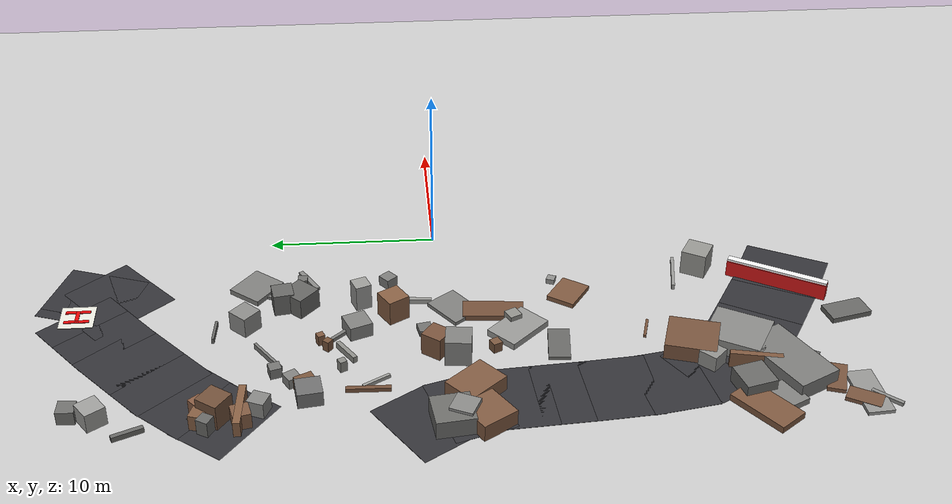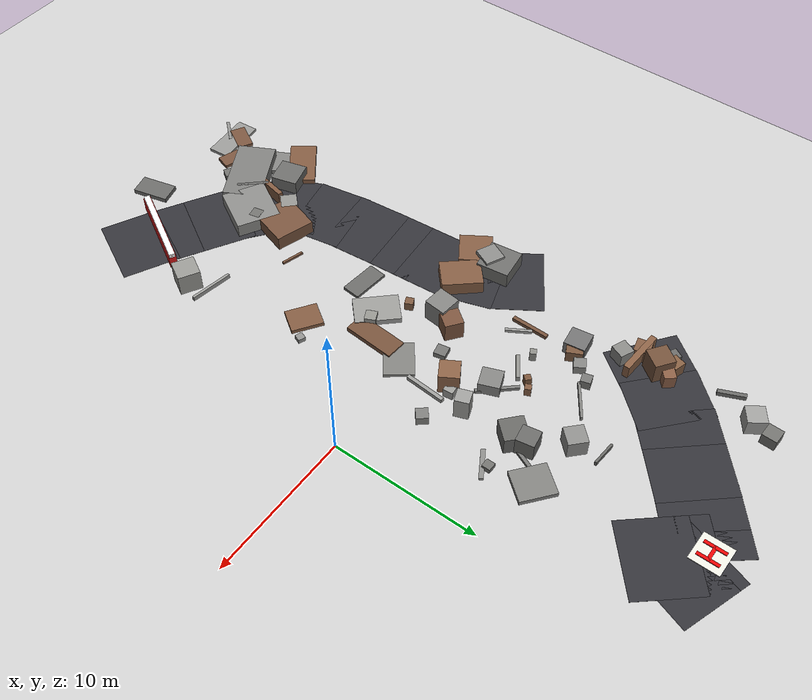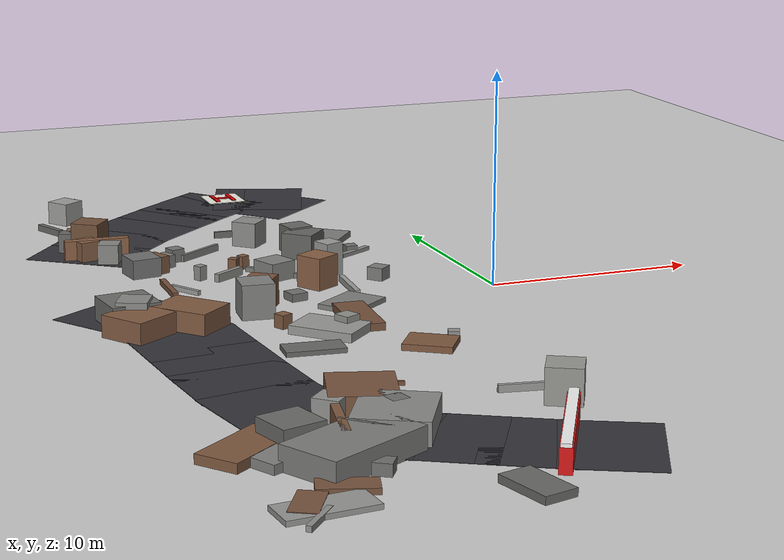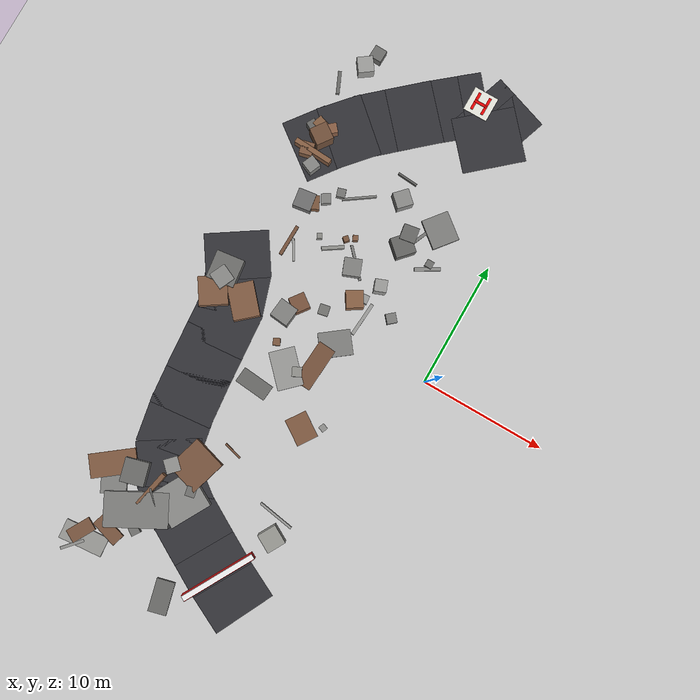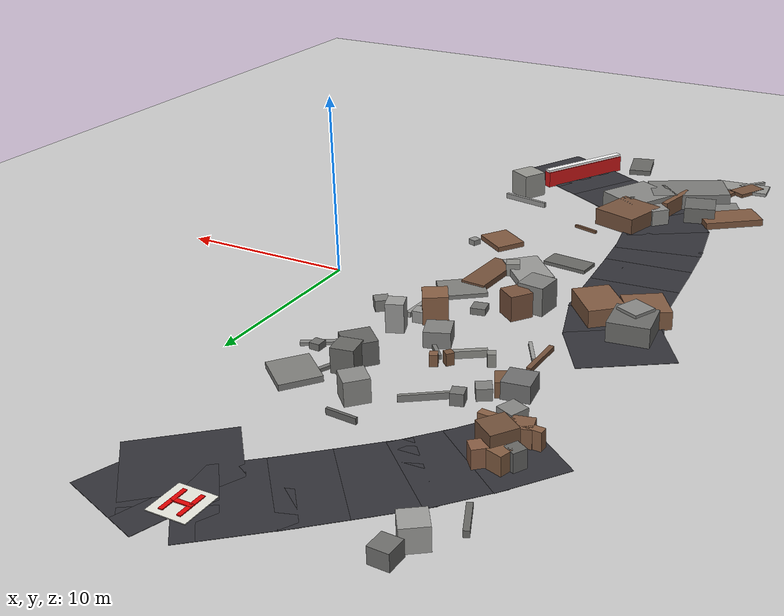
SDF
<sdf version="1.6">
 <world name="navitas_arena">
  <model name="ground_plane">
   <static>true</static>
   <link name="link">
    <collision name="collision">
     <geometry><plane><normal>0 0 1</normal><size>400 400</size></plane></geometry>
     <surface><friction><ode><mu>0.8</mu><mu2>0.8</mu2></ode></friction></surface>
    </collision>
    <visual name="visual">
     <cast_shadows>false</cast_shadows>
     <geometry><plane><normal>0 0 1</normal><size>400 400</size></plane></geometry>
     <material>
      <script><uri>file://media/materials/scripts/gazebo.material</uri><name>Gazebo/Grey</name></script>
     </material>
    </visual>
   </link>
  </model>
  <model name="road_orta_1_1">
   <static>true</static>
   <pose>-4.867 -20.856 0.040 0 0 2.677</pose>
   <link name="link">
    <collision name="col"><geometry><box><size>3.912 5.000 0.020</size></box></geometry></collision>
    <visual name="vis">
     <geometry><box><size>3.912 5.000 0.020</size></box></geometry>
     <material><ambient>0.20 0.20 0.22 1</ambient><diffuse>0.20 0.20 0.22 1</diffuse></material>
    </visual>
   </link>
  </model>
  <model name="road_orta_1_2">
   <static>true</static>
   <pose>-7.395 -19.509 0.040 0 0 2.624</pose>
   <link name="link">
    <collision name="col"><geometry><box><size>3.619 5.000 0.020</size></box></geometry></collision>
    <visual name="vis">
     <geometry><box><size>3.619 5.000 0.020</size></box></geometry>
     <material><ambient>0.20 0.20 0.22 1</ambient><diffuse>0.20 0.20 0.22 1</diffuse></material>
    </visual>
   </link>
  </model>
  <model name="road_orta_1_3">
   <static>true</static>
   <pose>-9.759 -18.153 0.040 0 0 2.617</pose>
   <link name="link">
    <collision name="col"><geometry><box><size>3.632 5.000 0.020</size></box></geometry></collision>
    <visual name="vis">
     <geometry><box><size>3.632 5.000 0.020</size></box></geometry>
     <material><ambient>0.20 0.20 0.22 1</ambient><diffuse>0.20 0.20 0.22 1</diffuse></material>
    </visual>
   </link>
  </model>
  <model name="road_orta_1_4">
   <static>true</static>
   <pose>-11.968 -16.688 0.040 0 0 2.491</pose>
   <link name="link">
    <collision name="col"><geometry><box><size>3.480 5.000 0.020</size></box></geometry></collision>
    <visual name="vis">
     <geometry><box><size>3.480 5.000 0.020</size></box></geometry>
     <material><ambient>0.20 0.20 0.22 1</ambient><diffuse>0.20 0.20 0.22 1</diffuse></material>
    </visual>
   </link>
  </model>
  <model name="road_orta_1_5">
   <static>true</static>
   <pose>-13.678 -14.833 0.040 0 0 2.138</pose>
   <link name="link">
    <collision name="col"><geometry><box><size>3.445 5.000 0.020</size></box></geometry></collision>
    <visual name="vis">
     <geometry><box><size>3.445 5.000 0.020</size></box></geometry>
     <material><ambient>0.20 0.20 0.22 1</ambient><diffuse>0.20 0.20 0.22 1</diffuse></material>
    </visual>
   </link>
  </model>
  <model name="road_orta_1_6">
   <static>true</static>
   <pose>-14.622 -12.340 0.040 0 0 1.751</pose>
   <link name="link">
    <collision name="col"><geometry><box><size>3.787 5.000 0.020</size></box></geometry></collision>
    <visual name="vis">
     <geometry><box><size>3.787 5.000 0.020</size></box></geometry>
     <material><ambient>0.20 0.20 0.22 1</ambient><diffuse>0.20 0.20 0.22 1</diffuse></material>
    </visual>
   </link>
  </model>
  <model name="road_orta_1_7">
   <static>true</static>
   <pose>-15.019 -9.460 0.040 0 0 1.665</pose>
   <link name="link">
    <collision name="col"><geometry><box><size>3.833 5.000 0.020</size></box></geometry></collision>
    <visual name="vis">
     <geometry><box><size>3.833 5.000 0.020</size></box></geometry>
     <material><ambient>0.20 0.20 0.22 1</ambient><diffuse>0.20 0.20 0.22 1</diffuse></material>
    </visual>
   </link>
  </model>
  <model name="road_orta_1_8">
   <static>true</static>
   <pose>-15.265 -6.600 0.040 0 0 1.647</pose>
   <link name="link">
    <collision name="col"><geometry><box><size>3.708 5.000 0.020</size></box></geometry></collision>
    <visual name="vis">
     <geometry><box><size>3.708 5.000 0.020</size></box></geometry>
     <material><ambient>0.20 0.20 0.22 1</ambient><diffuse>0.20 0.20 0.22 1</diffuse></material>
    </visual>
   </link>
  </model>
  <model name="road_orta_1_9">
   <static>true</static>
   <pose>-15.480 -3.800 0.040 0 0 1.648</pose>
   <link name="link">
    <collision name="col"><geometry><box><size>3.708 5.000 0.020</size></box></geometry></collision>
    <visual name="vis">
     <geometry><box><size>3.708 5.000 0.020</size></box></geometry>
     <material><ambient>0.20 0.20 0.22 1</ambient><diffuse>0.20 0.20 0.22 1</diffuse></material>
    </visual>
   </link>
  </model>
  <model name="road_orta_1_10">
   <static>true</static>
   <pose>-16.001 -1.117 0.040 0 0 1.881</pose>
   <link name="link">
    <collision name="col"><geometry><box><size>3.596 5.000 0.020</size></box></geometry></collision>
    <visual name="vis">
     <geometry><box><size>3.596 5.000 0.020</size></box></geometry>
     <material><ambient>0.20 0.20 0.22 1</ambient><diffuse>0.20 0.20 0.22 1</diffuse></material>
    </visual>
   </link>
  </model>
  <model name="road_orta_1_11">
   <static>true</static>
   <pose>-17.178 1.333 0.040 0 0 2.151</pose>
   <link name="link">
    <collision name="col"><geometry><box><size>3.690 5.000 0.020</size></box></geometry></collision>
    <visual name="vis">
     <geometry><box><size>3.690 5.000 0.020</size></box></geometry>
     <material><ambient>0.20 0.20 0.22 1</ambient><diffuse>0.20 0.20 0.22 1</diffuse></material>
    </visual>
   </link>
  </model>
  <model name="road_orta_1_15">
   <static>true</static>
   <pose>-16.307 11.926 0.040 0 0 0.923</pose>
   <link name="link">
    <collision name="col"><geometry><box><size>3.594 5.000 0.020</size></box></geometry></collision>
    <visual name="vis">
     <geometry><box><size>3.594 5.000 0.020</size></box></geometry>
     <material><ambient>0.20 0.20 0.22 1</ambient><diffuse>0.20 0.20 0.22 1</diffuse></material>
    </visual>
   </link>
  </model>
  <model name="road_orta_1_16">
   <static>true</static>
   <pose>-14.594 14.014 0.040 0 0 0.845</pose>
   <link name="link">
    <collision name="col"><geometry><box><size>3.611 5.000 0.020</size></box></geometry></collision>
    <visual name="vis">
     <geometry><box><size>3.611 5.000 0.020</size></box></geometry>
     <material><ambient>0.20 0.20 0.22 1</ambient><diffuse>0.20 0.20 0.22 1</diffuse></material>
    </visual>
   </link>
  </model>
  <model name="road_orta_1_17">
   <static>true</static>
   <pose>-12.759 15.866 0.040 0 0 0.730</pose>
   <link name="link">
    <collision name="col"><geometry><box><size>3.412 5.000 0.020</size></box></geometry></collision>
    <visual name="vis">
     <geometry><box><size>3.412 5.000 0.020</size></box></geometry>
     <material><ambient>0.20 0.20 0.22 1</ambient><diffuse>0.20 0.20 0.22 1</diffuse></material>
    </visual>
   </link>
  </model>
  <model name="road_orta_1_18">
   <static>true</static>
   <pose>-10.792 17.616 0.040 0 0 0.724</pose>
   <link name="link">
    <collision name="col"><geometry><box><size>3.653 5.000 0.020</size></box></geometry></collision>
    <visual name="vis">
     <geometry><box><size>3.653 5.000 0.020</size></box></geometry>
     <material><ambient>0.20 0.20 0.22 1</ambient><diffuse>0.20 0.20 0.22 1</diffuse></material>
    </visual>
   </link>
  </model>
  <model name="road_orta_1_19">
   <static>true</static>
   <pose>-8.635 19.461 0.040 0 0 0.692</pose>
   <link name="link">
    <collision name="col"><geometry><box><size>3.825 5.000 0.020</size></box></geometry></collision>
    <visual name="vis">
     <geometry><box><size>3.825 5.000 0.020</size></box></geometry>
     <material><ambient>0.20 0.20 0.22 1</ambient><diffuse>0.20 0.20 0.22 1</diffuse></material>
    </visual>
   </link>
  </model>
  <model name="road_orta_1_20">
   <static>true</static>
   <pose>-7.142 20.697 0.040 0 0 0.688</pose>
   <link name="link">
    <collision name="col"><geometry><box><size>1.853 5.000 0.020</size></box></geometry></collision>
    <visual name="vis">
     <geometry><box><size>1.853 5.000 0.020</size></box></geometry>
     <material><ambient>0.20 0.20 0.22 1</ambient><diffuse>0.20 0.20 0.22 1</diffuse></material>
    </visual>
   </link>
  </model>
  <model name="road_orta_2_15">
   <static>true</static>
   <pose>-4.875 18.815 0.040 0 0 2.289</pose>
   <link name="link">
    <collision name="col"><geometry><box><size>4.393 5.000 0.020</size></box></geometry></collision>
    <visual name="vis">
     <geometry><box><size>4.393 5.000 0.020</size></box></geometry>
     <material><ambient>0.20 0.20 0.22 1</ambient><diffuse>0.20 0.20 0.22 1</diffuse></material>
    </visual>
   </link>
  </model>
  <model name="road_orta_2_16">
   <static>true</static>
   <pose>-6.399 20.565 0.040 0 0 2.281</pose>
   <link name="link">
    <collision name="col"><geometry><box><size>2.048 5.000 0.020</size></box></geometry></collision>
    <visual name="vis">
     <geometry><box><size>2.048 5.000 0.020</size></box></geometry>
     <material><ambient>0.20 0.20 0.22 1</ambient><diffuse>0.20 0.20 0.22 1</diffuse></material>
    </visual>
   </link>
  </model>
  <model name="road_orta_3_25">
   <static>true</static>
   <pose>-4.597 20.255 0.040 0 0 2.811</pose>
   <link name="link">
    <collision name="col"><geometry><box><size>4.080 5.000 0.020</size></box></geometry></collision>
    <visual name="vis">
     <geometry><box><size>4.080 5.000 0.020</size></box></geometry>
     <material><ambient>0.20 0.20 0.22 1</ambient><diffuse>0.20 0.20 0.22 1</diffuse></material>
    </visual>
   </link>
  </model>
  <model name="road_orta_3_26">
   <static>true</static>
   <pose>-6.438 20.885 0.040 0 0 2.812</pose>
   <link name="link">
    <collision name="col"><geometry><box><size>1.610 5.000 0.020</size></box></geometry></collision>
    <visual name="vis">
     <geometry><box><size>1.610 5.000 0.020</size></box></geometry>
     <material><ambient>0.20 0.20 0.22 1</ambient><diffuse>0.20 0.20 0.22 1</diffuse></material>
    </visual>
   </link>
  </model>
  <model name="bar_orta_1">
   <static>true</static>
   <pose>-6.214 -20.182 0.500 0 0 4.200</pose>
   <link name="link">
    <collision name="col"><geometry><box><size>6.000 0.500 1.000</size></box></geometry></collision>
    <visual name="vis">
     <geometry><box><size>6.000 0.500 1.000</size></box></geometry>
     <material><ambient>0.85 0.10 0.10 1</ambient><diffuse>0.85 0.10 0.10 1</diffuse></material>
    </visual>
   </link>
  </model>
  <model name="bar_orta_1b">
   <static>true</static>
   <pose>-6.214 -20.182 1.000 0 0 4.200</pose>
   <link name="link">
    <collision name="col"><geometry><box><size>6.000 0.400 0.300</size></box></geometry></collision>
    <visual name="vis">
     <geometry><box><size>6.000 0.400 0.300</size></box></geometry>
     <material><ambient>0.95 0.95 0.95 1</ambient><diffuse>0.95 0.95 0.95 1</diffuse></material>
    </visual>
   </link>
  </model>
  <model name="blk_orta_1_0_0">
   <static>true</static>
   <pose>-13.789 -17.137 0.500 0 0 1.366</pose>
   <link name="link">
    <collision name="col"><geometry><box><size>2.909 0.349 1.000</size></box></geometry></collision>
    <visual name="vis">
     <geometry><box><size>2.909 0.349 1.000</size></box></geometry>
     <material><ambient>0.50 0.35 0.25 1</ambient><diffuse>0.50 0.35 0.25 1</diffuse></material>
    </visual>
   </link>
  </model>
  <model name="blk_orta_1_0_1">
   <static>true</static>
   <pose>-11.109 -15.801 0.500 0 0 1.775</pose>
   <link name="link">
    <collision name="col"><geometry><box><size>0.743 0.743 1.000</size></box></geometry></collision>
    <visual name="vis">
     <geometry><box><size>0.743 0.743 1.000</size></box></geometry>
     <material><ambient>0.44 0.44 0.43 1</ambient><diffuse>0.44 0.44 0.43 1</diffuse></material>
    </visual>
   </link>
  </model>
  <model name="blk_orta_1_0_2">
   <static>true</static>
   <pose>-13.114 -17.917 0.500 0 0 2.328</pose>
   <link name="link">
    <collision name="col"><geometry><box><size>2.211 0.216 1.000</size></box></geometry></collision>
    <visual name="vis">
     <geometry><box><size>2.211 0.216 1.000</size></box></geometry>
     <material><ambient>0.41 0.41 0.40 1</ambient><diffuse>0.41 0.41 0.40 1</diffuse></material>
    </visual>
   </link>
  </model>
  <model name="blk_orta_1_0_3">
   <static>true</static>
   <pose>-11.470 -16.651 0.500 0 0 1.062</pose>
   <link name="link">
    <collision name="col"><geometry><box><size>3.324 3.010 1.000</size></box></geometry></collision>
    <visual name="vis">
     <geometry><box><size>3.324 3.010 1.000</size></box></geometry>
     <material><ambient>0.54 0.54 0.53 1</ambient><diffuse>0.54 0.54 0.53 1</diffuse></material>
    </visual>
   </link>
  </model>
  <model name="blk_orta_1_0_4">
   <static>true</static>
   <pose>-13.959 -18.974 0.500 0 0 0.489</pose>
   <link name="link">
    <collision name="col"><geometry><box><size>4.842 2.659 1.000</size></box></geometry></collision>
    <visual name="vis">
     <geometry><box><size>4.842 2.659 1.000</size></box></geometry>
     <material><ambient>0.49 0.49 0.48 1</ambient><diffuse>0.49 0.49 0.48 1</diffuse></material>
    </visual>
   </link>
  </model>
  <model name="blk_orta_1_0_5">
   <static>true</static>
   <pose>-15.481 -16.636 0.500 0 0 1.836</pose>
   <link name="link">
    <collision name="col"><geometry><box><size>1.846 1.846 1.000</size></box></geometry></collision>
    <visual name="vis">
     <geometry><box><size>1.846 1.846 1.000</size></box></geometry>
     <material><ambient>0.42 0.42 0.41 1</ambient><diffuse>0.42 0.42 0.41 1</diffuse></material>
    </visual>
   </link>
  </model>
  <model name="blk_orta_1_0_6">
   <static>true</static>
   <pose>-13.312 -14.808 0.500 0 0 0.800</pose>
   <link name="link">
    <collision name="col"><geometry><box><size>1.115 1.115 1.000</size></box></geometry></collision>
    <visual name="vis">
     <geometry><box><size>1.115 1.115 1.000</size></box></geometry>
     <material><ambient>0.57 0.57 0.56 1</ambient><diffuse>0.57 0.57 0.56 1</diffuse></material>
    </visual>
   </link>
  </model>
  <model name="blk_orta_1_0_7">
   <static>true</static>
   <pose>-11.785 -13.976 0.500 0 0 1.281</pose>
   <link name="link">
    <collision name="col"><geometry><box><size>2.906 2.723 1.000</size></box></geometry></collision>
    <visual name="vis">
     <geometry><box><size>2.906 2.723 1.000</size></box></geometry>
     <material><ambient>0.47 0.33 0.24 1</ambient><diffuse>0.47 0.33 0.24 1</diffuse></material>
    </visual>
   </link>
  </model>
  <model name="blk_orta_1_1_1">
   <static>true</static>
   <pose>-17.761 -0.033 0.500 0 0 1.296</pose>
   <link name="link">
    <collision name="col"><geometry><box><size>0.597 0.597 1.000</size></box></geometry></collision>
    <visual name="vis">
     <geometry><box><size>0.597 0.597 1.000</size></box></geometry>
     <material><ambient>0.55 0.55 0.53 1</ambient><diffuse>0.55 0.55 0.53 1</diffuse></material>
    </visual>
   </link>
  </model>
  <model name="blk_orta_1_1_3">
   <static>true</static>
   <pose>-17.197 -0.771 0.646 0 0 1.134</pose>
   <link name="link">
    <collision name="col"><geometry><box><size>1.362 1.362 1.292</size></box></geometry></collision>
    <visual name="vis">
     <geometry><box><size>1.362 1.362 1.292</size></box></geometry>
     <material><ambient>0.54 0.54 0.53 1</ambient><diffuse>0.54 0.54 0.53 1</diffuse></material>
    </visual>
   </link>
  </model>
  <model name="blk_orta_1_1_4">
   <static>true</static>
   <pose>-17.312 -0.121 0.562 0 0 0.123</pose>
   <link name="link">
    <collision name="col"><geometry><box><size>2.219 2.219 1.124</size></box></geometry></collision>
    <visual name="vis">
     <geometry><box><size>2.219 2.219 1.124</size></box></geometry>
     <material><ambient>0.43 0.43 0.42 1</ambient><diffuse>0.43 0.43 0.42 1</diffuse></material>
    </visual>
   </link>
  </model>
  <model name="blk_orta_1_1_6">
   <static>true</static>
   <pose>-17.311 -1.991 0.500 0 0 0.576</pose>
   <link name="link">
    <collision name="col"><geometry><box><size>2.222 2.222 1.000</size></box></geometry></collision>
    <visual name="vis">
     <geometry><box><size>2.222 2.222 1.000</size></box></geometry>
     <material><ambient>0.51 0.36 0.26 1</ambient><diffuse>0.51 0.36 0.26 1</diffuse></material>
    </visual>
   </link>
  </model>
  <model name="blk_orta_1_1_7">
   <static>true</static>
   <pose>-14.928 -1.519 0.500 0 0 2.293</pose>
   <link name="link">
    <collision name="col"><geometry><box><size>2.719 2.048 1.000</size></box></geometry></collision>
    <visual name="vis">
     <geometry><box><size>2.719 2.048 1.000</size></box></geometry>
     <material><ambient>0.51 0.36 0.26 1</ambient><diffuse>0.51 0.36 0.26 1</diffuse></material>
    </visual>
   </link>
  </model>
  <model name="blk_orta_1_2_0">
   <static>true</static>
   <pose>-15.695 10.122 0.500 0 0 1.169</pose>
   <link name="link">
    <collision name="col"><geometry><box><size>0.996 0.996 1.000</size></box></geometry></collision>
    <visual name="vis">
     <geometry><box><size>0.996 0.996 1.000</size></box></geometry>
     <material><ambient>0.53 0.53 0.52 1</ambient><diffuse>0.53 0.53 0.52 1</diffuse></material>
    </visual>
   </link>
  </model>
  <model name="blk_orta_1_2_1">
   <static>true</static>
   <pose>-16.675 13.234 0.500 0 0 1.268</pose>
   <link name="link">
    <collision name="col"><geometry><box><size>0.844 0.844 1.000</size></box></geometry></collision>
    <visual name="vis">
     <geometry><box><size>0.844 0.844 1.000</size></box></geometry>
     <material><ambient>0.52 0.37 0.26 1</ambient><diffuse>0.52 0.37 0.26 1</diffuse></material>
    </visual>
   </link>
  </model>
  <model name="blk_orta_1_2_2">
   <static>true</static>
   <pose>-16.110 11.100 0.500 0 0 3.080</pose>
   <link name="link">
    <collision name="col"><geometry><box><size>3.111 0.407 1.000</size></box></geometry></collision>
    <visual name="vis">
     <geometry><box><size>3.111 0.407 1.000</size></box></geometry>
     <material><ambient>0.54 0.38 0.27 1</ambient><diffuse>0.54 0.38 0.27 1</diffuse></material>
    </visual>
   </link>
  </model>
  <model name="blk_orta_1_2_4">
   <static>true</static>
   <pose>-16.128 12.422 0.788 0 0 2.518</pose>
   <link name="link">
    <collision name="col"><geometry><box><size>1.392 1.392 1.576</size></box></geometry></collision>
    <visual name="vis">
     <geometry><box><size>1.392 1.392 1.576</size></box></geometry>
     <material><ambient>0.45 0.32 0.23 1</ambient><diffuse>0.45 0.32 0.23 1</diffuse></material>
    </visual>
   </link>
  </model>
  <model name="blk_orta_1_2_5">
   <static>true</static>
   <pose>-15.697 13.327 0.500 0 0 0.709</pose>
   <link name="link">
    <collision name="col"><geometry><box><size>0.769 0.769 1.000</size></box></geometry></collision>
    <visual name="vis">
     <geometry><box><size>0.769 0.769 1.000</size></box></geometry>
     <material><ambient>0.54 0.37 0.27 1</ambient><diffuse>0.54 0.37 0.27 1</diffuse></material>
    </visual>
   </link>
  </model>
  <model name="blk_orta_1_2_6">
   <static>true</static>
   <pose>-16.611 11.033 0.500 0 0 0.236</pose>
   <link name="link">
    <collision name="col"><geometry><box><size>1.013 1.013 1.000</size></box></geometry></collision>
    <visual name="vis">
     <geometry><box><size>1.013 1.013 1.000</size></box></geometry>
     <material><ambient>0.51 0.36 0.26 1</ambient><diffuse>0.51 0.36 0.26 1</diffuse></material>
    </visual>
   </link>
  </model>
  <model name="blk_orta_1_2_7">
   <static>true</static>
   <pose>-17.157 12.847 0.500 0 0 2.629</pose>
   <link name="link">
    <collision name="col"><geometry><box><size>0.707 0.707 1.000</size></box></geometry></collision>
    <visual name="vis">
     <geometry><box><size>0.707 0.707 1.000</size></box></geometry>
     <material><ambient>0.41 0.41 0.40 1</ambient><diffuse>0.41 0.41 0.40 1</diffuse></material>
    </visual>
   </link>
  </model>
  <model name="deb_orta_7">
   <static>true</static>
   <pose>-13.443 8.440 0.307 0 0 0.536</pose>
   <link name="link">
    <collision name="col"><geometry><box><size>0.771 0.771 0.615</size></box></geometry></collision>
    <visual name="vis">
     <geometry><box><size>0.771 0.771 0.615</size></box></geometry>
     <material><ambient>0.51 0.51 0.50 1</ambient><diffuse>0.51 0.51 0.50 1</diffuse></material>
    </visual>
   </link>
  </model>
  <model name="deb_orta_8">
   <static>true</static>
   <pose>-6.487 4.545 0.793 0 0 0.359</pose>
   <link name="link">
    <collision name="col"><geometry><box><size>0.948 0.948 1.586</size></box></geometry></collision>
    <visual name="vis">
     <geometry><box><size>0.948 0.948 1.586</size></box></geometry>
     <material><ambient>0.61 0.61 0.60 1</ambient><diffuse>0.61 0.61 0.60 1</diffuse></material>
    </visual>
   </link>
  </model>
  <model name="deb_orta_11">
   <static>true</static>
   <pose>-10.564 6.492 0.327 0 0 2.427</pose>
   <link name="link">
    <collision name="col"><geometry><box><size>0.428 0.428 0.654</size></box></geometry></collision>
    <visual name="vis">
     <geometry><box><size>0.428 0.428 0.654</size></box></geometry>
     <material><ambient>0.47 0.33 0.23 1</ambient><diffuse>0.47 0.33 0.23 1</diffuse></material>
    </visual>
   </link>
  </model>
  <model name="deb_orta_12">
   <static>true</static>
   <pose>-15.956 18.925 0.576 0 0 0.615</pose>
   <link name="link">
    <collision name="col"><geometry><box><size>1.236 1.236 1.151</size></box></geometry></collision>
    <visual name="vis">
     <geometry><box><size>1.236 1.236 1.151</size></box></geometry>
     <material><ambient>0.62 0.62 0.61 1</ambient><diffuse>0.62 0.62 0.61 1</diffuse></material>
    </visual>
   </link>
  </model>
  <model name="deb_orta_14">
   <static>true</static>
   <pose>-7.683 2.695 0.760 0 0 2.113</pose>
   <link name="link">
    <collision name="col"><geometry><box><size>1.333 1.333 1.520</size></box></geometry></collision>
    <visual name="vis">
     <geometry><box><size>1.333 1.333 1.520</size></box></geometry>
     <material><ambient>0.54 0.38 0.27 1</ambient><diffuse>0.54 0.38 0.27 1</diffuse></material>
    </visual>
   </link>
  </model>
  <model name="deb_orta_15">
   <static>true</static>
   <pose>-14.329 4.285 0.127 0 0 1.550</pose>
   <link name="link">
    <collision name="col"><geometry><box><size>2.525 0.264 0.253</size></box></geometry></collision>
    <visual name="vis">
     <geometry><box><size>2.525 0.264 0.253</size></box></geometry>
     <material><ambient>0.46 0.32 0.23 1</ambient><diffuse>0.46 0.32 0.23 1</diffuse></material>
    </visual>
   </link>
  </model>
  <model name="deb_orta_19">
   <static>true</static>
   <pose>-9.592 -4.349 0.198 0 0 2.333</pose>
   <link name="link">
    <collision name="col"><geometry><box><size>2.995 2.026 0.396</size></box></geometry></collision>
    <visual name="vis">
     <geometry><box><size>2.995 2.026 0.396</size></box></geometry>
     <material><ambient>0.60 0.60 0.59 1</ambient><diffuse>0.60 0.60 0.59 1</diffuse></material>
    </visual>
   </link>
  </model>
  <model name="deb_orta_20">
   <static>true</static>
   <pose>-9.327 0.955 0.183 0 0 0.197</pose>
   <link name="link">
    <collision name="col"><geometry><box><size>0.796 0.796 0.367</size></box></geometry></collision>
    <visual name="vis">
     <geometry><box><size>0.796 0.796 0.367</size></box></geometry>
     <material><ambient>0.45 0.45 0.44 1</ambient><diffuse>0.45 0.45 0.44 1</diffuse></material>
    </visual>
   </link>
  </model>
  <model name="deb_orta_21">
   <static>true</static>
   <pose>-6.332 -7.675 0.143 0 0 2.547</pose>
   <link name="link">
    <collision name="col"><geometry><box><size>2.142 1.718 0.286</size></box></geometry></collision>
    <visual name="vis">
     <geometry><box><size>2.142 1.718 0.286</size></box></geometry>
     <material><ambient>0.50 0.35 0.25 1</ambient><diffuse>0.50 0.35 0.25 1</diffuse></material>
    </visual>
   </link>
  </model>
  <model name="deb_orta_24">
   <static>true</static>
   <pose>-12.434 5.687 0.340 0 0 0.484</pose>
   <link name="link">
    <collision name="col"><geometry><box><size>0.426 0.426 0.680</size></box></geometry></collision>
    <visual name="vis">
     <geometry><box><size>0.426 0.426 0.680</size></box></geometry>
     <material><ambient>0.54 0.54 0.52 1</ambient><diffuse>0.54 0.54 0.52 1</diffuse></material>
    </visual>
   </link>
  </model>
  <model name="deb_orta_25">
   <static>true</static>
   <pose>-7.833 -3.093 0.171 0 0 1.497</pose>
   <link name="link">
    <collision name="col"><geometry><box><size>3.526 1.416 0.342</size></box></geometry></collision>
    <visual name="vis">
     <geometry><box><size>3.526 1.416 0.342</size></box></geometry>
     <material><ambient>0.46 0.32 0.23 1</ambient><diffuse>0.46 0.32 0.23 1</diffuse></material>
    </visual>
   </link>
  </model>
  <model name="deb_orta_33">
   <static>true</static>
   <pose>-17.164 16.937 0.159 0 0 1.984</pose>
   <link name="link">
    <collision name="col"><geometry><box><size>1.786 0.273 0.319</size></box></geometry></collision>
    <visual name="vis">
     <geometry><box><size>1.786 0.273 0.319</size></box></geometry>
     <material><ambient>0.41 0.41 0.40 1</ambient><diffuse>0.41 0.41 0.40 1</diffuse></material>
    </visual>
   </link>
  </model>
  <model name="deb_orta_38">
   <static>true</static>
   <pose>-8.781 12.945 0.162 0 0 3.067</pose>
   <link name="link">
    <collision name="col"><geometry><box><size>1.662 0.152 0.324</size></box></geometry></collision>
    <visual name="vis">
     <geometry><box><size>1.662 0.152 0.324</size></box></geometry>
     <material><ambient>0.40 0.40 0.39 1</ambient><diffuse>0.40 0.40 0.39 1</diffuse></material>
    </visual>
   </link>
  </model>
  <model name="deb_orta_39">
   <static>true</static>
   <pose>-5.996 8.835 0.093 0 0 1.160</pose>
   <link name="link">
    <collision name="col"><geometry><box><size>2.787 0.234 0.185</size></box></geometry></collision>
    <visual name="vis">
     <geometry><box><size>2.787 0.234 0.185</size></box></geometry>
     <material><ambient>0.46 0.46 0.45 1</ambient><diffuse>0.46 0.46 0.45 1</diffuse></material>
    </visual>
   </link>
  </model>
  <model name="deb_orta_41">
   <static>true</static>
   <pose>-4.757 -14.246 0.156 0 0 2.978</pose>
   <link name="link">
    <collision name="col"><geometry><box><size>2.922 0.182 0.313</size></box></geometry></collision>
    <visual name="vis">
     <geometry><box><size>2.922 0.182 0.313</size></box></geometry>
     <material><ambient>0.60 0.60 0.59 1</ambient><diffuse>0.60 0.60 0.59 1</diffuse></material>
    </visual>
   </link>
  </model>
  <model name="deb_orta_45">
   <static>true</static>
   <pose>-16.373 -22.812 0.103 0 0 0.083</pose>
   <link name="link">
    <collision name="col"><geometry><box><size>3.471 1.506 0.205</size></box></geometry></collision>
    <visual name="vis">
     <geometry><box><size>3.471 1.506 0.205</size></box></geometry>
     <material><ambient>0.59 0.59 0.58 1</ambient><diffuse>0.59 0.59 0.58 1</diffuse></material>
    </visual>
   </link>
  </model>
  <model name="deb_orta_48">
   <static>true</static>
   <pose>-14.785 7.492 0.456 0 0 0.141</pose>
   <link name="link">
    <collision name="col"><geometry><box><size>1.423 1.423 0.911</size></box></geometry></collision>
    <visual name="vis">
     <geometry><box><size>1.423 1.423 0.911</size></box></geometry>
     <material><ambient>0.44 0.44 0.44 1</ambient><diffuse>0.44 0.44 0.44 1</diffuse></material>
    </visual>
   </link>
  </model>
  <model name="deb_orta_52">
   <static>true</static>
   <pose>-15.086 -21.388 0.121 0 0 2.839</pose>
   <link name="link">
    <collision name="col"><geometry><box><size>2.239 1.044 0.242</size></box></geometry></collision>
    <visual name="vis">
     <geometry><box><size>2.239 1.044 0.242</size></box></geometry>
     <material><ambient>0.47 0.33 0.24 1</ambient><diffuse>0.47 0.33 0.24 1</diffuse></material>
    </visual>
   </link>
  </model>
  <model name="deb_orta_53">
   <static>true</static>
   <pose>-11.279 9.825 0.170 0 0 0.606</pose>
   <link name="link">
    <collision name="col"><geometry><box><size>2.664 0.162 0.341</size></box></geometry></collision>
    <visual name="vis">
     <geometry><box><size>2.664 0.162 0.341</size></box></geometry>
     <material><ambient>0.50 0.50 0.49 1</ambient><diffuse>0.50 0.50 0.49 1</diffuse></material>
    </visual>
   </link>
  </model>
  <model name="deb_orta_54">
   <static>true</static>
   <pose>-4.098 8.018 0.180 0 0 3.123</pose>
   <link name="link">
    <collision name="col"><geometry><box><size>0.580 0.580 0.360</size></box></geometry></collision>
    <visual name="vis">
     <geometry><box><size>0.580 0.580 0.360</size></box></geometry>
     <material><ambient>0.44 0.44 0.43 1</ambient><diffuse>0.44 0.44 0.43 1</diffuse></material>
    </visual>
   </link>
  </model>
  <model name="deb_orta_58">
   <static>true</static>
   <pose>-8.753 -4.158 0.342 0 0 2.018</pose>
   <link name="link">
    <collision name="col"><geometry><box><size>0.755 0.755 0.684</size></box></geometry></collision>
    <visual name="vis">
     <geometry><box><size>0.755 0.755 0.684</size></box></geometry>
     <material><ambient>0.57 0.57 0.55 1</ambient><diffuse>0.57 0.57 0.55 1</diffuse></material>
    </visual>
   </link>
  </model>
  <model name="deb_orta_59">
   <static>true</static>
   <pose>-14.585 7.753 0.162 0 0 1.539</pose>
   <link name="link">
    <collision name="col"><geometry><box><size>0.771 0.771 0.325</size></box></geometry></collision>
    <visual name="vis">
     <geometry><box><size>0.771 0.771 0.325</size></box></geometry>
     <material><ambient>0.44 0.44 0.44 1</ambient><diffuse>0.44 0.44 0.44 1</diffuse></material>
    </visual>
   </link>
  </model>
  <model name="deb_orta_61">
   <static>true</static>
   <pose>-15.573 20.261 0.409 0 0 3.106</pose>
   <link name="link">
    <collision name="col"><geometry><box><size>0.996 0.996 0.818</size></box></geometry></collision>
    <visual name="vis">
     <geometry><box><size>0.996 0.996 0.818</size></box></geometry>
     <material><ambient>0.44 0.44 0.43 1</ambient><diffuse>0.44 0.44 0.43 1</diffuse></material>
    </visual>
   </link>
  </model>
  <model name="deb_orta_65">
   <static>true</static>
   <pose>-10.052 -3.342 0.150 0 0 2.154</pose>
   <link name="link">
    <collision name="col"><geometry><box><size>0.650 0.650 0.300</size></box></geometry></collision>
    <visual name="vis">
     <geometry><box><size>0.650 0.650 0.300</size></box></geometry>
     <material><ambient>0.43 0.43 0.42 1</ambient><diffuse>0.43 0.43 0.42 1</diffuse></material>
    </visual>
   </link>
  </model>
  <model name="deb_orta_69">
   <static>true</static>
   <pose>-9.961 -11.710 0.084 0 0 2.871</pose>
   <link name="link">
    <collision name="col"><geometry><box><size>1.537 0.156 0.168</size></box></geometry></collision>
    <visual name="vis">
     <geometry><box><size>1.537 0.156 0.168</size></box></geometry>
     <material><ambient>0.46 0.32 0.23 1</ambient><diffuse>0.46 0.32 0.23 1</diffuse></material>
    </visual>
   </link>
  </model>
  <model name="deb_orta_77">
   <static>true</static>
   <pose>-4.033 7.633 0.091 0 0 0.533</pose>
   <link name="link">
    <collision name="col"><geometry><box><size>2.029 0.294 0.183</size></box></geometry></collision>
    <visual name="vis">
     <geometry><box><size>2.029 0.294 0.183</size></box></geometry>
     <material><ambient>0.54 0.54 0.53 1</ambient><diffuse>0.54 0.54 0.53 1</diffuse></material>
    </visual>
   </link>
  </model>
  <model name="deb_orta_78">
   <static>true</static>
   <pose>-11.106 -6.543 0.104 0 0 3.046</pose>
   <link name="link">
    <collision name="col"><geometry><box><size>2.584 1.244 0.208</size></box></geometry></collision>
    <visual name="vis">
     <geometry><box><size>2.584 1.244 0.208</size></box></geometry>
     <material><ambient>0.41 0.41 0.40 1</ambient><diffuse>0.41 0.41 0.40 1</diffuse></material>
    </visual>
   </link>
  </model>
  <model name="deb_orta_79">
   <static>true</static>
   <pose>-11.221 -2.944 0.308 0 0 0.438</pose>
   <link name="link">
    <collision name="col"><geometry><box><size>0.556 0.556 0.617</size></box></geometry></collision>
    <visual name="vis">
     <geometry><box><size>0.556 0.556 0.617</size></box></geometry>
     <material><ambient>0.49 0.35 0.25 1</ambient><diffuse>0.49 0.35 0.25 1</diffuse></material>
    </visual>
   </link>
  </model>
  <model name="deb_orta_82">
   <static>true</static>
   <pose>-9.028 5.325 0.117 0 0 2.314</pose>
   <link name="link">
    <collision name="col"><geometry><box><size>2.791 0.208 0.235</size></box></geometry></collision>
    <visual name="vis">
     <geometry><box><size>2.791 0.208 0.235</size></box></geometry>
     <material><ambient>0.48 0.48 0.47 1</ambient><diffuse>0.48 0.48 0.47 1</diffuse></material>
    </visual>
   </link>
  </model>
  <model name="deb_orta_83">
   <static>true</static>
   <pose>-8.318 11.208 0.619 0 0 2.384</pose>
   <link name="link">
    <collision name="col"><geometry><box><size>1.269 1.269 1.238</size></box></geometry></collision>
    <visual name="vis">
     <geometry><box><size>1.269 1.269 1.238</size></box></geometry>
     <material><ambient>0.55 0.55 0.54 1</ambient><diffuse>0.55 0.55 0.54 1</diffuse></material>
    </visual>
   </link>
  </model>
  <model name="deb_orta_84">
   <static>true</static>
   <pose>-13.670 3.834 0.110 0 0 2.110</pose>
   <link name="link">
    <collision name="col"><geometry><box><size>1.727 0.181 0.220</size></box></geometry></collision>
    <visual name="vis">
     <geometry><box><size>1.727 0.181 0.220</size></box></geometry>
     <material><ambient>0.61 0.61 0.60 1</ambient><diffuse>0.61 0.61 0.60 1</diffuse></material>
    </visual>
   </link>
  </model>
  <model name="deb_orta_87">
   <static>true</static>
   <pose>-9.069 4.810 0.434 0 0 0.369</pose>
   <link name="link">
    <collision name="col"><geometry><box><size>1.373 1.373 0.868</size></box></geometry></collision>
    <visual name="vis">
     <geometry><box><size>1.373 1.373 0.868</size></box></geometry>
     <material><ambient>0.51 0.51 0.50 1</ambient><diffuse>0.51 0.51 0.50 1</diffuse></material>
    </visual>
   </link>
  </model>
  <model name="deb_orta_90">
   <static>true</static>
   <pose>-12.646 9.401 0.317 0 0 1.856</pose>
   <link name="link">
    <collision name="col"><geometry><box><size>0.671 0.671 0.634</size></box></geometry></collision>
    <visual name="vis">
     <geometry><box><size>0.671 0.671 0.634</size></box></geometry>
     <material><ambient>0.46 0.46 0.45 1</ambient><diffuse>0.46 0.46 0.45 1</diffuse></material>
    </visual>
   </link>
  </model>
  <model name="deb_orta_93">
   <static>true</static>
   <pose>-16.784 -17.611 0.192 0 0 2.048</pose>
   <link name="link">
    <collision name="col"><geometry><box><size>2.854 1.952 0.384</size></box></geometry></collision>
    <visual name="vis">
     <geometry><box><size>2.854 1.952 0.384</size></box></geometry>
     <material><ambient>0.51 0.51 0.50 1</ambient><diffuse>0.51 0.51 0.50 1</diffuse></material>
    </visual>
   </link>
  </model>
  <model name="deb_orta_96">
   <static>true</static>
   <pose>-4.582 2.912 0.308 0 0 0.711</pose>
   <link name="link">
    <collision name="col"><geometry><box><size>0.774 0.774 0.616</size></box></geometry></collision>
    <visual name="vis">
     <geometry><box><size>0.774 0.774 0.616</size></box></geometry>
     <material><ambient>0.49 0.49 0.48 1</ambient><diffuse>0.49 0.49 0.48 1</diffuse></material>
    </visual>
   </link>
  </model>
  <model name="deb_orta_100">
   <static>true</static>
   <pose>-6.561 9.096 0.668 0 0 1.738</pose>
   <link name="link">
    <collision name="col"><geometry><box><size>1.216 1.216 1.336</size></box></geometry></collision>
    <visual name="vis">
     <geometry><box><size>1.216 1.216 1.336</size></box></geometry>
     <material><ambient>0.41 0.41 0.40 1</ambient><diffuse>0.41 0.41 0.40 1</diffuse></material>
    </visual>
   </link>
  </model>
  <model name="deb_orta_106">
   <static>true</static>
   <pose>-13.383 -20.396 0.246 0 0 2.559</pose>
   <link name="link">
    <collision name="col"><geometry><box><size>0.734 0.734 0.492</size></box></geometry></collision>
    <visual name="vis">
     <geometry><box><size>0.734 0.734 0.492</size></box></geometry>
     <material><ambient>0.44 0.44 0.43 1</ambient><diffuse>0.44 0.44 0.43 1</diffuse></material>
    </visual>
   </link>
  </model>
  <model name="deb_orta_107">
   <static>true</static>
   <pose>-17.273 -16.945 0.200 0 0 0.653</pose>
   <link name="link">
    <collision name="col"><geometry><box><size>3.595 1.846 0.400</size></box></geometry></collision>
    <visual name="vis">
     <geometry><box><size>3.595 1.846 0.400</size></box></geometry>
     <material><ambient>0.50 0.35 0.25 1</ambient><diffuse>0.50 0.35 0.25 1</diffuse></material>
    </visual>
   </link>
  </model>
  <model name="deb_orta_115">
   <static>true</static>
   <pose>-11.125 5.446 0.193 0 0 0.582</pose>
   <link name="link">
    <collision name="col"><geometry><box><size>1.752 0.264 0.387</size></box></geometry></collision>
    <visual name="vis">
     <geometry><box><size>1.752 0.264 0.387</size></box></geometry>
     <material><ambient>0.56 0.56 0.54 1</ambient><diffuse>0.56 0.56 0.54 1</diffuse></material>
    </visual>
   </link>
  </model>
  <model name="deb_orta_119">
   <static>true</static>
   <pose>-7.296 -0.851 0.114 0 0 0.650</pose>
   <link name="link">
    <collision name="col"><geometry><box><size>2.517 1.975 0.228</size></box></geometry></collision>
    <visual name="vis">
     <geometry><box><size>2.517 1.975 0.228</size></box></geometry>
     <material><ambient>0.50 0.50 0.49 1</ambient><diffuse>0.50 0.50 0.49 1</diffuse></material>
    </visual>
   </link>
  </model>
  <model name="deb_orta_124">
   <static>true</static>
   <pose>-11.779 -0.799 0.791 0 0 3.035</pose>
   <link name="link">
    <collision name="col"><geometry><box><size>1.492 1.492 1.583</size></box></geometry></collision>
    <visual name="vis">
     <geometry><box><size>1.492 1.492 1.583</size></box></geometry>
     <material><ambient>0.51 0.51 0.50 1</ambient><diffuse>0.51 0.51 0.50 1</diffuse></material>
    </visual>
   </link>
  </model>
  <model name="deb_orta_127">
   <static>true</static>
   <pose>-6.548 8.099 0.628 0 0 0.835</pose>
   <link name="link">
    <collision name="col"><geometry><box><size>1.576 1.576 1.255</size></box></geometry></collision>
    <visual name="vis">
     <geometry><box><size>1.576 1.576 1.255</size></box></geometry>
     <material><ambient>0.40 0.40 0.39 1</ambient><diffuse>0.40 0.40 0.39 1</diffuse></material>
    </visual>
   </link>
  </model>
  <model name="deb_orta_130">
   <static>true</static>
   <pose>-14.172 7.638 0.416 0 0 2.022</pose>
   <link name="link">
    <collision name="col"><geometry><box><size>1.070 1.070 0.832</size></box></geometry></collision>
    <visual name="vis">
     <geometry><box><size>1.070 1.070 0.832</size></box></geometry>
     <material><ambient>0.48 0.34 0.24 1</ambient><diffuse>0.48 0.34 0.24 1</diffuse></material>
    </visual>
   </link>
  </model>
  <model name="deb_orta_132">
   <static>true</static>
   <pose>-16.854 -22.428 0.116 0 0 1.058</pose>
   <link name="link">
    <collision name="col"><geometry><box><size>1.940 1.068 0.232</size></box></geometry></collision>
    <visual name="vis">
     <geometry><box><size>1.940 1.068 0.232</size></box></geometry>
     <material><ambient>0.47 0.33 0.24 1</ambient><diffuse>0.47 0.33 0.24 1</diffuse></material>
    </visual>
   </link>
  </model>
  <model name="deb_orta_133">
   <static>true</static>
   <pose>-6.443 1.795 0.140 0 0 1.498</pose>
   <link name="link">
    <collision name="col"><geometry><box><size>2.740 0.256 0.280</size></box></geometry></collision>
    <visual name="vis">
     <geometry><box><size>2.740 0.256 0.280</size></box></geometry>
     <material><ambient>0.61 0.61 0.60 1</ambient><diffuse>0.61 0.61 0.60 1</diffuse></material>
    </visual>
   </link>
  </model>
  <model name="deb_orta_139">
   <static>true</static>
   <pose>-4.655 10.716 0.158 0 0 2.466</pose>
   <link name="link">
    <collision name="col"><geometry><box><size>2.372 2.143 0.315</size></box></geometry></collision>
    <visual name="vis">
     <geometry><box><size>2.372 2.143 0.315</size></box></geometry>
     <material><ambient>0.50 0.50 0.49 1</ambient><diffuse>0.50 0.50 0.49 1</diffuse></material>
    </visual>
   </link>
  </model>
  <model name="deb_orta_141">
   <static>true</static>
   <pose>-4.205 -15.761 0.760 0 0 1.061</pose>
   <link name="link">
    <collision name="col"><geometry><box><size>1.503 1.503 1.520</size></box></geometry></collision>
    <visual name="vis">
     <geometry><box><size>1.503 1.503 1.520</size></box></geometry>
     <material><ambient>0.59 0.59 0.57 1</ambient><diffuse>0.59 0.59 0.57 1</diffuse></material>
    </visual>
   </link>
  </model>
  <model name="deb_orta_142">
   <static>true</static>
   <pose>-7.098 3.194 0.321 0 0 1.680</pose>
   <link name="link">
    <collision name="col"><geometry><box><size>0.664 0.664 0.642</size></box></geometry></collision>
    <visual name="vis">
     <geometry><box><size>0.664 0.664 0.642</size></box></geometry>
     <material><ambient>0.60 0.60 0.59 1</ambient><diffuse>0.60 0.60 0.59 1</diffuse></material>
    </visual>
   </link>
  </model>
  <model name="deb_orta_150">
   <static>true</static>
   <pose>-11.152 0.385 0.692 0 0 0.932</pose>
   <link name="link">
    <collision name="col"><geometry><box><size>1.256 1.256 1.383</size></box></geometry></collision>
    <visual name="vis">
     <geometry><box><size>1.256 1.256 1.383</size></box></geometry>
     <material><ambient>0.48 0.33 0.24 1</ambient><diffuse>0.48 0.33 0.24 1</diffuse></material>
    </visual>
   </link>
  </model>
  <model name="deb_orta_154">
   <static>true</static>
   <pose>-16.879 -23.650 0.111 0 0 0.841</pose>
   <link name="link">
    <collision name="col"><geometry><box><size>1.839 0.224 0.221</size></box></geometry></collision>
    <visual name="vis">
     <geometry><box><size>1.839 0.224 0.221</size></box></geometry>
     <material><ambient>0.56 0.56 0.55 1</ambient><diffuse>0.56 0.56 0.55 1</diffuse></material>
    </visual>
   </link>
  </model>
  <model name="deb_orta_160">
   <static>true</static>
   <pose>-4.943 -6.830 0.158 0 0 1.189</pose>
   <link name="link">
    <collision name="col"><geometry><box><size>0.496 0.496 0.316</size></box></geometry></collision>
    <visual name="vis">
     <geometry><box><size>0.496 0.496 0.316</size></box></geometry>
     <material><ambient>0.56 0.56 0.55 1</ambient><diffuse>0.56 0.56 0.55 1</diffuse></material>
    </visual>
   </link>
  </model>
  <model name="deb_orta_163">
   <static>true</static>
   <pose>-9.139 -23.626 0.162 0 0 1.817</pose>
   <link name="link">
    <collision name="col"><geometry><box><size>2.494 1.409 0.323</size></box></geometry></collision>
    <visual name="vis">
     <geometry><box><size>2.494 1.409 0.323</size></box></geometry>
     <material><ambient>0.41 0.41 0.40 1</ambient><diffuse>0.41 0.41 0.40 1</diffuse></material>
    </visual>
   </link>
  </model>
  <model name="deb_orta_166">
   <static>true</static>
   <pose>-9.978 6.911 0.317 0 0 1.994</pose>
   <link name="link">
    <collision name="col"><geometry><box><size>0.423 0.423 0.634</size></box></geometry></collision>
    <visual name="vis">
     <geometry><box><size>0.423 0.423 0.634</size></box></geometry>
     <material><ambient>0.51 0.36 0.26 1</ambient><diffuse>0.51 0.36 0.26 1</diffuse></material>
    </visual>
   </link>
  </model>
  <model name="hbpad_orta">
   <static>true</static>
   <pose>-6.773 21.000 0.070 0 0 0.000</pose>
   <link name="link">
    <collision name="col"><geometry><box><size>2.000 2.000 0.040</size></box></geometry></collision>
    <visual name="vis">
     <geometry><box><size>2.000 2.000 0.040</size></box></geometry>
     <material><ambient>0.92 0.92 0.88 1</ambient><diffuse>0.92 0.92 0.88 1</diffuse></material>
    </visual>
   </link>
  </model>
  <model name="H_orta_l">
   <static>true</static>
   <pose>-7.223 21.000 0.100 0 0 0.000</pose>
   <link name="link">
    <collision name="col"><geometry><box><size>0.220 1.450 0.080</size></box></geometry></collision>
    <visual name="vis">
     <geometry><box><size>0.220 1.450 0.080</size></box></geometry>
     <material><ambient>0.90 0.02 0.02 1</ambient><diffuse>0.90 0.02 0.02 1</diffuse></material>
    </visual>
   </link>
  </model>
  <model name="H_orta_r">
   <static>true</static>
   <pose>-6.323 21.000 0.100 0 0 0.000</pose>
   <link name="link">
    <collision name="col"><geometry><box><size>0.220 1.450 0.080</size></box></geometry></collision>
    <visual name="vis">
     <geometry><box><size>0.220 1.450 0.080</size></box></geometry>
     <material><ambient>0.90 0.02 0.02 1</ambient><diffuse>0.90 0.02 0.02 1</diffuse></material>
    </visual>
   </link>
  </model>
  <model name="H_orta_b">
   <static>true</static>
   <pose>-6.773 21.000 0.100 0 0 0.000</pose>
   <link name="link">
    <collision name="col"><geometry><box><size>1.100 0.220 0.080</size></box></geometry></collision>
    <visual name="vis">
     <geometry><box><size>1.100 0.220 0.080</size></box></geometry>
     <material><ambient>0.90 0.02 0.02 1</ambient><diffuse>0.90 0.02 0.02 1</diffuse></material>
    </visual>
   </link>
  </model>
 </world>
</sdf>
